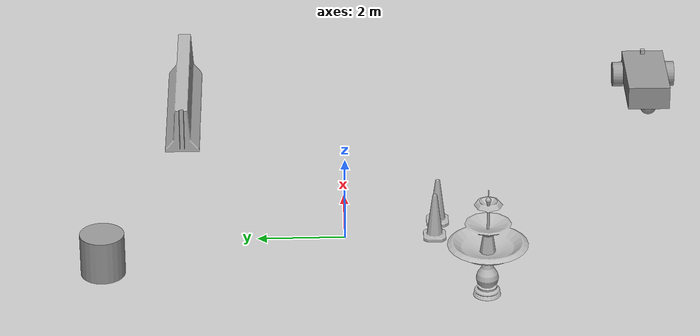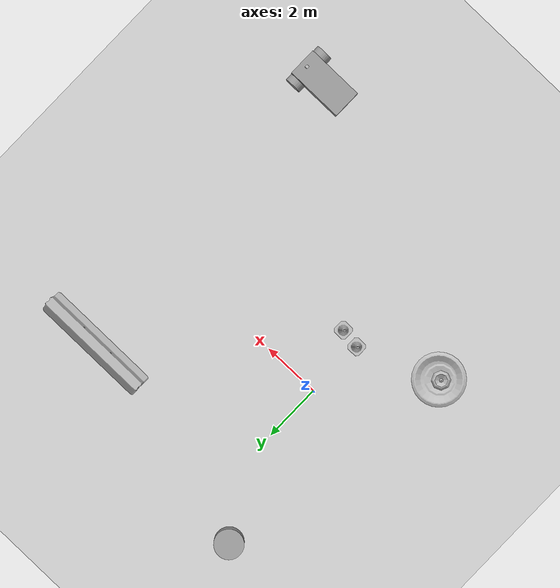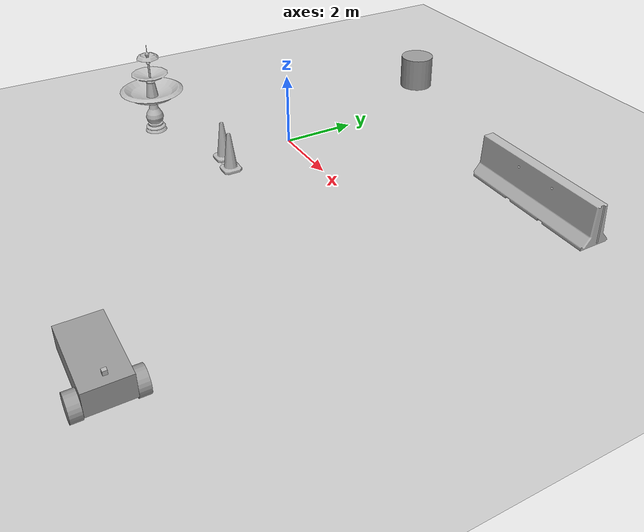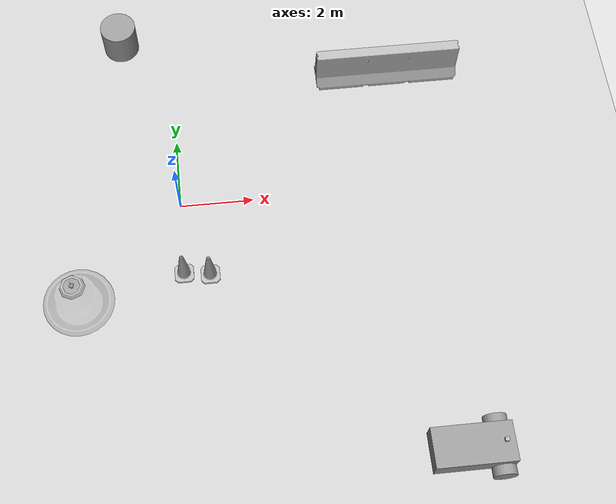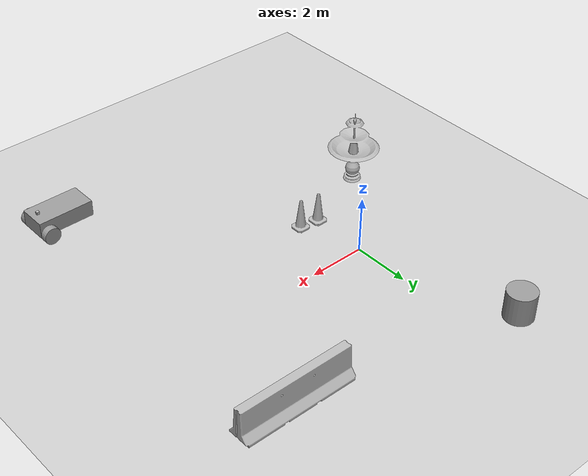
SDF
<sdf version="1.7">
 <world name="default">
  <light name="sun" type="directional">
   <pose>0 0 10 0 -0 0</pose>
   <diffuse>0.8 0.8 0.8 1</diffuse>
   <specular>0.2 0.2 0.2 1</specular>
   <attenuation>
    <range>1000</range>
    <constant>0.9</constant>
    <linear>0.01</linear>
    <quadratic>0.001</quadratic>
   </attenuation>
   <direction>-0.5 0.1 -0.9</direction>
   <spot><inner_angle>0</inner_angle><outer_angle>0</outer_angle><falloff>0</falloff></spot>
  </light>
  <model name="ground_plane">
   <static>1</static>
   <link name="link">
    <collision name="collision">
     <geometry><plane><normal>0 0 1</normal><size>100 100</size></plane></geometry>
     <surface>
      <contact><collide_bitmask>65535</collide_bitmask></contact>
      <friction><ode><mu>100</mu><mu2>50</mu2></ode></friction>
     </surface>
    </collision>
    <visual name="visual">
     <cast_shadows>0</cast_shadows>
     <geometry><plane><normal>0 0 1</normal><size>100 100</size></plane></geometry>
     <material>
      <script><uri>file://media/materials/scripts/gazebo.material</uri><name>Gazebo/Grey</name></script>
     </material>
    </visual>
   </link>
  </model>
  <gravity>0 0 -9.8</gravity>
  <magnetic_field>6e-06 2.3e-05 -4.2e-05</magnetic_field>
  <atmosphere type="adiabatic"/>
  <physics type="ode">
   <max_step_size>0.001</max_step_size>
   <real_time_factor>1</real_time_factor>
   <real_time_update_rate>1000</real_time_update_rate>
  </physics>
  <scene><ambient>0.4 0.4 0.4 1</ambient><background>0.7 0.7 0.7 1</background><shadows>1</shadows></scene>
  <spherical_coordinates>
   <surface_model>EARTH_WGS84</surface_model>
   <latitude_deg>0</latitude_deg>
   <longitude_deg>0</longitude_deg>
   <elevation>0</elevation>
   <heading_deg>0</heading_deg>
  </spherical_coordinates>
  <model name="unit_cylinder">
   <pose>-1.43069 5.44621 0.499992 -3e-06 3e-06 0</pose>
   <link name="link">
    <inertial>
     <mass>1</mass>
     <inertia><ixx>0.145833</ixx><ixy>0</ixy><ixz>0</ixz><iyy>0.145833</iyy><iyz>0</iyz><izz>0.125</izz></inertia>
    </inertial>
    <collision name="collision">
     <geometry><cylinder><radius>0.5</radius><length>1</length></cylinder></geometry>
    </collision>
    <visual name="visual">
     <geometry><cylinder><radius>0.5</radius><length>1</length></cylinder></geometry>
     <material>
      <script><name>Gazebo/Grey</name><uri>file://media/materials/scripts/gazebo.material</uri></script>
     </material>
    </visual>
   </link>
  </model>
  <model name="Construction Cone">
   <link name="link">
    <collision name="collision">
     <geometry>
      <mesh><scale>10 10 10</scale><uri>model://construction_cone/meshes/construction_cone.dae</uri></mesh>
     </geometry>
    </collision>
    <visual name="visual">
     <geometry>
      <mesh><scale>10 10 10</scale><uri>model://construction_cone/meshes/construction_cone.dae</uri></mesh>
     </geometry>
    </visual>
    <inertial>
     <inertia><ixx>1</ixx><ixy>0</ixy><ixz>0</ixz><iyy>1</iyy><iyz>0</iyz><izz>1</izz></inertia>
     <mass>1</mass>
    </inertial>
   </link>
   <pose>-0.018509 -2.02744 -0 0 -1e-06 0</pose>
  </model>
  <model name="fountain">
   <static>1</static>
   <link name="link">
    <collision name="collision">
     <geometry><mesh><uri>model://fountain/meshes/fountain.dae</uri></mesh></geometry>
    </collision>
    <visual name="visual">
     <geometry><mesh><uri>model://fountain/meshes/fountain.dae</uri></mesh></geometry>
    </visual>
   </link>
   <pose>-2.61398 -3.08392 0 0 -0 0</pose>
  </model>
  <model name="follower_vehicle">
   <pose>6.81896 -7.45061 0.325006 0 -1.2e-05 0.000484</pose>
   <link name="chassis">
    <pose>-0.151427 -0 0.175 0 -0 0</pose>
    <inertial>
     <mass>1.14395</mass>
     <inertia>
      <ixx>0.126164</ixx>
      <ixy>0</ixy>
      <ixz>0</ixz>
      <iyy>0.416519</iyy>
      <iyz>0</iyz>
      <izz>0.481014</izz>
     </inertia>
    </inertial>
    <visual name="visual">
     <geometry><box><size>2.01142 1 0.568726</size></box></geometry>
     <material>
      <script><uri>file://media/materials/scripts/gazebo.material</uri><name>Gazebo/Grey</name></script>
     </material>
    </visual>
    <collision name="collision">
     <geometry><box><size>2.01142 1 0.568726</size></box></geometry>
     <surface>
      <friction><ode><mu>1</mu><mu2>1</mu2><fdir1>0 0 0</fdir1><slip1>0</slip1><slip2>0</slip2></ode></friction>
      <bounce><restitution_coefficient>0</restitution_coefficient><threshold>1e+06</threshold></bounce>
      <contact>
       <collide_without_contact>0</collide_without_contact>
       <collide_without_contact_bitmask>1</collide_without_contact_bitmask>
       <collide_bitmask>1</collide_bitmask>
       <ode>
        <soft_cfm>0</soft_cfm>
        <soft_erp>0.2</soft_erp>
        <kp>1e+13</kp>
        <kd>1</kd>
        <max_vel>0.01</max_vel>
        <min_depth>0</min_depth>
       </ode>
      </contact>
     </surface>
    </collision>
   </link>
   <link name="wheel_1">
    <pose>0.554283 0.625029 -0.025 1.5707 -0 0</pose>
    <inertial>
     <mass>2</mass>
     <inertia><ixx>0.145833</ixx><ixy>0</ixy><ixz>0</ixz><iyy>0.145833</iyy><iyz>0</iyz><izz>0.125</izz></inertia>
    </inertial>
    <visual name="visual">
     <geometry><cylinder><radius>0.3</radius><length>0.25</length></cylinder></geometry>
     <material>
      <script><uri>file://media/materials/scripts/gazebo.material</uri><name>Gazebo/Grey</name></script>
     </material>
    </visual>
    <collision name="collision">
     <geometry><cylinder><radius>0.3</radius><length>0.25</length></cylinder></geometry>
     <surface>
      <friction><ode><mu>1</mu><mu2>1</mu2><fdir1>0 0 0</fdir1><slip1>0</slip1><slip2>0</slip2></ode></friction>
      <bounce><restitution_coefficient>0</restitution_coefficient><threshold>1e+06</threshold></bounce>
      <contact>
       <collide_without_contact>0</collide_without_contact>
       <collide_without_contact_bitmask>1</collide_without_contact_bitmask>
       <collide_bitmask>1</collide_bitmask>
       <ode>
        <soft_cfm>0</soft_cfm>
        <soft_erp>0.2</soft_erp>
        <kp>1e+13</kp>
        <kd>1</kd>
        <max_vel>0.01</max_vel>
        <min_depth>0</min_depth>
       </ode>
      </contact>
     </surface>
    </collision>
   </link>
   <link name="wheel_2">
    <pose>0.554282 -0.625029 -0.025 1.5707 -0 0</pose>
    <inertial>
     <mass>2</mass>
     <inertia><ixx>0.145833</ixx><ixy>0</ixy><ixz>0</ixz><iyy>0.145833</iyy><iyz>0</iyz><izz>0.125</izz></inertia>
    </inertial>
    <visual name="visual">
     <geometry><cylinder><radius>0.3</radius><length>0.25</length></cylinder></geometry>
     <material>
      <script><uri>file://media/materials/scripts/gazebo.material</uri><name>Gazebo/Grey</name></script>
     </material>
    </visual>
    <collision name="collision">
     <geometry><cylinder><radius>0.3</radius><length>0.25</length></cylinder></geometry>
     <surface>
      <friction><ode><mu>1</mu><mu2>1</mu2><fdir1>0 0 0</fdir1><slip1>0</slip1><slip2>0</slip2></ode></friction>
      <bounce><restitution_coefficient>0</restitution_coefficient><threshold>1e+06</threshold></bounce>
      <contact>
       <collide_without_contact>0</collide_without_contact>
       <collide_without_contact_bitmask>1</collide_without_contact_bitmask>
       <collide_bitmask>1</collide_bitmask>
       <ode>
        <soft_cfm>0</soft_cfm>
        <soft_erp>0.2</soft_erp>
        <kp>1e+13</kp>
        <kd>1</kd>
        <max_vel>0.01</max_vel>
        <min_depth>0</min_depth>
       </ode>
      </contact>
     </surface>
    </collision>
   </link>
   <link name="caster">
    <pose>-0.957138 -0 -0.125 0 -0 0</pose>
    <inertial>
     <mass>1</mass>
     <inertia><ixx>0.1</ixx><ixy>0</ixy><ixz>0</ixz><iyy>0.1</iyy><iyz>0</iyz><izz>0.1</izz></inertia>
    </inertial>
    <visual name="visual">
     <geometry><sphere><radius>0.2</radius></sphere></geometry>
     <material>
      <script><uri>file://media/materials/scripts/gazebo.material</uri><name>Gazebo/Grey</name></script>
     </material>
    </visual>
    <collision name="collision">
     <geometry><sphere><radius>0.2</radius></sphere></geometry>
     <surface>
      <friction><ode><mu>1</mu><mu2>1</mu2><fdir1>0 0 0</fdir1><slip1>0</slip1><slip2>0</slip2></ode></friction>
      <bounce><restitution_coefficient>0</restitution_coefficient><threshold>1e+06</threshold></bounce>
      <contact>
       <collide_without_contact>0</collide_without_contact>
       <collide_without_contact_bitmask>1</collide_without_contact_bitmask>
       <collide_bitmask>1</collide_bitmask>
       <ode>
        <soft_cfm>0</soft_cfm>
        <soft_erp>0.2</soft_erp>
        <kp>1e+13</kp>
        <kd>1</kd>
        <max_vel>0.01</max_vel>
        <min_depth>0</min_depth>
       </ode>
      </contact>
     </surface>
    </collision>
   </link>
   <model name="depth_camera">
    <link name="link">
     <pose>0.05 0.05 0.05 0 -0 0</pose>
     <inertial>
      <mass>0.1</mass>
      <inertia>
       <ixx>0.000166667</ixx>
       <iyy>0.000166667</iyy>
       <izz>0.000166667</izz>
       <ixy>0</ixy>
       <ixz>0</ixz>
       <iyz>0</iyz>
      </inertia>
     </inertial>
     <collision name="collision"><geometry><box><size>0.1 0.1 0.1</size></box></geometry></collision>
     <visual name="visual"><geometry><box><size>0.1 0.1 0.1</size></box></geometry></visual>
     <sensor name="camera" type="depth">
      <camera name="depth">
       <horizontal_fov>1.047</horizontal_fov>
       <image><width>320</width><height>240</height></image>
       <clip><near>0.1</near><far>100</far></clip>
      </camera>
      <always_on>1</always_on>
      <update_rate>30</update_rate>
      <visualize>1</visualize>
     </sensor>
    </link>
    <pose>0.569632 -0.03223 0.502056 0 -0 0</pose>
   </model>
   <joint name="chassis_wheel_1_revolute" type="revolute">
    <parent>chassis</parent>
    <child>wheel_1</child>
    <axis>
     <xyz>0 0 1</xyz>
     <limit>
      <lower>-1.79769e+308</lower>
      <upper>1.79769e+308</upper>
      <effort>-1</effort>
      <velocity>-1</velocity>
     </limit>
     <dynamics>
      <spring_reference>0</spring_reference>
      <spring_stiffness>0</spring_stiffness>
      <damping>0</damping>
      <friction>0</friction>
     </dynamics>
    </axis>
    <physics>
     <ode><limit><cfm>0</cfm><erp>0.2</erp></limit><suspension><cfm>0</cfm><erp>0.2</erp></suspension></ode>
    </physics>
   </joint>
   <joint name="chassis_wheel_2_revolute" type="revolute">
    <parent>chassis</parent>
    <child>wheel_2</child>
    <axis>
     <xyz>0 0 1</xyz>
     <limit>
      <lower>-1.79769e+308</lower>
      <upper>1.79769e+308</upper>
      <effort>-1</effort>
      <velocity>-1</velocity>
     </limit>
     <dynamics>
      <spring_reference>0</spring_reference>
      <spring_stiffness>0</spring_stiffness>
      <damping>0</damping>
      <friction>0</friction>
     </dynamics>
    </axis>
    <physics>
     <ode><limit><cfm>0</cfm><erp>0.2</erp></limit><suspension><cfm>0</cfm><erp>0.2</erp></suspension></ode>
    </physics>
   </joint>
   <joint name="chassis_caster_ball" type="ball">
    <parent>chassis</parent>
    <child>caster</child>
    <physics>
     <ode><limit><cfm>0</cfm><erp>0.2</erp></limit><suspension><cfm>0</cfm><erp>0.2</erp></suspension></ode>
    </physics>
   </joint>
   <joint name="chassis_depth_camera_link_fixed" type="fixed">
    <parent>chassis</parent>
    <child>depth_camera::link</child>
    <physics>
     <ode><limit><cfm>0</cfm><erp>0.2</erp></limit><suspension><cfm>0</cfm><erp>0.2</erp></suspension></ode>
    </physics>
   </joint>
   <static>0</static>
   <plugin name="follower" filename="libFollowerPlugin.so"/>
  </model>
  <model name="Construction Cone_0">
   <link name="link">
    <collision name="collision">
     <geometry>
      <mesh><scale>10 10 10</scale><uri>model://construction_cone/meshes/construction_cone.dae</uri></mesh>
     </geometry>
    </collision>
    <visual name="visual">
     <geometry>
      <mesh><scale>10 10 10</scale><uri>model://construction_cone/meshes/construction_cone.dae</uri></mesh>
     </geometry>
    </visual>
    <inertial>
     <inertia><ixx>1</ixx><ixy>0</ixy><ixz>0</ixz><iyy>1</iyy><iyz>0</iyz><izz>1</izz></inertia>
     <mass>1</mass>
    </inertial>
   </link>
   <pose>0.670064 -2.11872 -0 0 -1e-06 0</pose>
  </model>
  <model name="jersey_barrier">
   <static>1</static>
   <link name="link">
    <visual name="visual">
     <geometry><mesh><uri>model://jersey_barrier/meshes/jersey_barrier.dae</uri></mesh></geometry>
    </visual>
    <collision name="upright">
     <pose>0 0 0.5715 0 -0 0</pose>
     <geometry><box><size>4.06542 0.3063 1.143</size></box></geometry>
    </collision>
    <collision name="base">
     <pose>0 0 0.032258 0 -0 0</pose>
     <geometry><box><size>4.06542 0.8107 0.064516</size></box></geometry>
    </collision>
    <collision name="base2">
     <pose>0 0 0.1 0 -0 0</pose>
     <geometry><box><size>4.06542 0.65 0.1</size></box></geometry>
    </collision>
    <collision name="base3">
     <pose>0 0 0.2 0 -0 0</pose>
     <geometry><box><size>4.06542 0.5 0.1</size></box></geometry>
    </collision>
    <collision name="left-angle">
     <pose>0 -0.224 0.2401 0.9 -0 0</pose>
     <geometry><box><size>4.06542 0.5 0.064516</size></box></geometry>
    </collision>
    <collision name="right-angle">
     <pose>0 0.224 0.2401 -0.9 0 0</pose>
     <geometry><box><size>4.06542 0.5 0.064516</size></box></geometry>
    </collision>
   </link>
   <pose>6.19789 3.79773 0 0 -0 0</pose>
  </model>
 </world>
</sdf>
